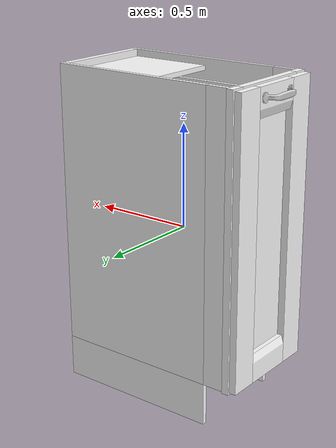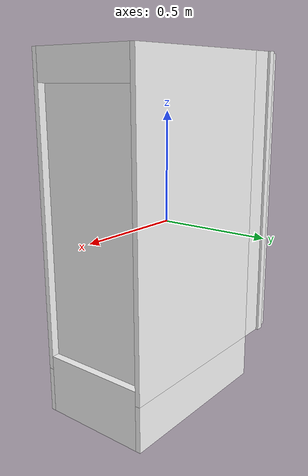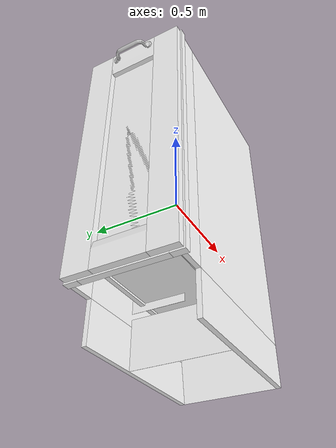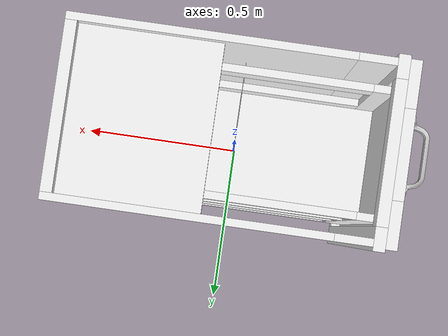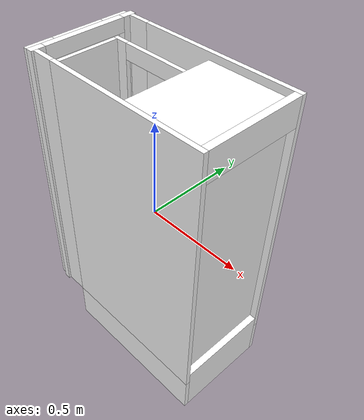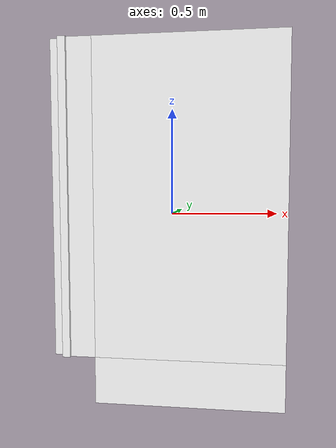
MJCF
<?xml version='1.0' encoding='us-ascii'?>
<mujoco model="partnet_2950d1baed4dbd78c59350d819542ec7">
    <compiler angle="radian" eulerseq="zxy" meshdir="textured_objs/" />
    <size nconmax="100" njmax="500" />
    <asset>
		<mesh file="original-23.stl" name="original-23" />
        <mesh file="original-34.stl" name="original-34" />
        <mesh file="original-38.stl" name="original-38" />
        <mesh file="original-29.stl" name="original-29" />
        <mesh file="original-45.stl" name="original-45" />
        <mesh file="original-42.stl" name="original-42" />
        <mesh file="original-43.stl" name="original-43" />
        <mesh file="original-48.stl" name="original-48" />
        <mesh file="original-44.stl" name="original-44" />
        <mesh file="original-47.stl" name="original-47" />
        <mesh file="original-49.stl" name="original-49" />
        <mesh file="original-15.stl" name="original-15" />
        <mesh file="original-14.stl" name="original-14" />
        <mesh file="original-11.stl" name="original-11" />
        <mesh file="original-10.stl" name="original-10" />
        <mesh file="original-30.stl" name="original-30" />
        <mesh file="original-50.stl" name="original-50" />
        <mesh file="original-5.stl" name="original-5" />
        <mesh file="original-2.stl" name="original-2" />
        <mesh file="original-19.stl" name="original-19" />
        <mesh file="original-7.stl" name="original-7" />
        <mesh file="original-26.stl" name="original-26" />
        <mesh file="original-25.stl" name="original-25" />
        <mesh file="original-24.stl" name="original-24" />
        <mesh file="original-3.stl" name="original-3" />
        <mesh file="original-27.stl" name="original-27" />
        <mesh file="original-8.stl" name="original-8" />
        <mesh file="original-6.stl" name="original-6" />
        <mesh file="original-28.stl" name="original-28" />
        <mesh file="original-32.stl" name="original-32" />
        <mesh file="original-36.stl" name="original-36" />
        <mesh file="original-22.stl" name="original-22" />
        <mesh file="original-4.stl" name="original-4" />
        <mesh file="original-39.stl" name="original-39" />
        <mesh file="original-33.stl" name="original-33" />
        <mesh file="original-37.stl" name="original-37" />
        <mesh file="original-40.stl" name="original-40" />
        <mesh file="original-18.stl" name="original-18" />
        <mesh file="original-16.stl" name="original-16" />
        <mesh file="original-17.stl" name="original-17" />
        <mesh file="original-12.stl" name="original-12" />
		<texture builtin="flat" height="32" name="objTex" rgb1="1 1 1" type="cube" width="32" />
		<texture builtin="flat" height="32" name="handleTex" rgb1="0.8 0.8 0.8" type="cube" width="32" />
		<material name="geomObj" shininess="0.03" specular="0.75" texture="objTex" />
		<material name="geomHandle" shininess="0.03" specular="0.75" texture="handleTex" />
	</asset>
	<worldbody>
		<body name="base" pos="0.0 0.0 0.0" quat="1.0 0.0 0.0 0.0">
			<geom material="geomObj" mesh="original-15" quat="0.5 0.5 -0.5 -0.5" type="mesh" />
			<geom material="geomObj" mesh="original-14" quat="0.5 0.5 -0.5 -0.5" type="mesh" />
			<geom material="geomObj" mesh="original-11" quat="0.5 0.5 -0.5 -0.5" type="mesh" />
			<geom material="geomObj" mesh="original-10" quat="0.5 0.5 -0.5 -0.5" type="mesh" />
			<geom material="geomObj" mesh="original-30" quat="0.5 0.5 -0.5 -0.5" type="mesh" />
			<geom material="geomObj" mesh="original-50" quat="0.5 0.5 -0.5 -0.5" type="mesh" />
			<geom material="geomObj" mesh="original-5" quat="0.5 0.5 -0.5 -0.5" type="mesh" />
			<geom material="geomObj" mesh="original-2" quat="0.5 0.5 -0.5 -0.5" type="mesh" />
			<geom material="geomObj" mesh="original-19" quat="0.5 0.5 -0.5 -0.5" type="mesh" />
			<geom material="geomObj" mesh="original-7" quat="0.5 0.5 -0.5 -0.5" type="mesh" />
			<geom material="geomObj" mesh="original-26" quat="0.5 0.5 -0.5 -0.5" type="mesh" />
			<geom material="geomObj" mesh="original-25" quat="0.5 0.5 -0.5 -0.5" type="mesh" />
			<geom material="geomObj" mesh="original-24" quat="0.5 0.5 -0.5 -0.5" type="mesh" />
			<geom material="geomObj" mesh="original-3" quat="0.5 0.5 -0.5 -0.5" type="mesh" />
			<geom material="geomObj" mesh="original-27" quat="0.5 0.5 -0.5 -0.5" type="mesh" />
			<geom material="geomObj" mesh="original-8" quat="0.5 0.5 -0.5 -0.5" type="mesh" />
			<geom material="geomObj" mesh="original-6" quat="0.5 0.5 -0.5 -0.5" type="mesh" />
			<geom material="geomObj" mesh="original-28" quat="0.5 0.5 -0.5 -0.5" type="mesh" />
			<geom material="geomObj" mesh="original-32" quat="0.5 0.5 -0.5 -0.5" type="mesh" />
			<geom material="geomObj" mesh="original-36" quat="0.5 0.5 -0.5 -0.5" type="mesh" />
			<geom material="geomObj" mesh="original-22" quat="0.5 0.5 -0.5 -0.5" type="mesh" />
			<geom material="geomObj" mesh="original-4" quat="0.5 0.5 -0.5 -0.5" type="mesh" />
			<geom material="geomObj" mesh="original-39" quat="0.5 0.5 -0.5 -0.5" type="mesh" />
			<geom material="geomObj" mesh="original-33" quat="0.5 0.5 -0.5 -0.5" type="mesh" />
			<geom material="geomObj" mesh="original-37" quat="0.5 0.5 -0.5 -0.5" type="mesh" />
			<geom material="geomObj" mesh="original-40" quat="0.5 0.5 -0.5 -0.5" type="mesh" />
			<geom material="geomObj" mesh="original-18" quat="0.5 0.5 -0.5 -0.5" type="mesh" />
			<geom material="geomObj" mesh="original-16" quat="0.5 0.5 -0.5 -0.5" type="mesh" />
			<geom material="geomObj" mesh="original-17" quat="0.5 0.5 -0.5 -0.5" type="mesh" />
			<geom material="geomObj" mesh="original-12" quat="0.5 0.5 -0.5 -0.5" type="mesh" />
			<body name="link_0" pos="-0.472396 0.0256518 0.0692093" quat="0.5 0.5 -0.5 -0.5">
				<inertial diaginertia="9.77233 7.75724 3.65604" mass="43.0217" pos="0.0305805 -0.0986264 -0.199105" quat="0.582778 0.812631 0 0" />
				<joint axis="0 0 1" limited="true" name="joint_0" pos="0 0 0" range="0 0.724" type="slide" />
				<geom material="geomObj" mesh="original-23" name="shelf" pos="0.0256518 -0.0692093 -0.472396" type="mesh" />
				<geom material="geomObj" mesh="original-34" pos="0.0256518 -0.0692093 -0.472396" type="mesh" />
				<geom material="geomObj" mesh="original-38" pos="0.0256518 -0.0692093 -0.472396" type="mesh" />
				<geom material="geomObj" mesh="original-29" name="cabinet_door" pos="0.0256518 -0.0692093 -0.472396" type="mesh" />
				<geom material="geomObj" mesh="original-45" pos="0.0256518 -0.0692093 -0.472396" type="mesh" />
				<geom material="geomObj" mesh="original-42" pos="0.0256518 -0.0692093 -0.472396" type="mesh" />
				<geom material="geomObj" mesh="original-43" pos="0.0256518 -0.0692093 -0.472396" type="mesh" />
				<geom material="geomObj" mesh="original-48" pos="0.0256518 -0.0692093 -0.472396" type="mesh" />
				<geom material="geomObj" mesh="original-44" pos="0.0256518 -0.0692093 -0.472396" type="mesh" />
				<geom material="geomObj" mesh="original-47" pos="0.0256518 -0.0692093 -0.472396" type="mesh" />
				<geom material="geomHandle" mesh="original-49" name="handle" pos="0.0256518 -0.0692093 -0.472396" type="mesh" />
			</body>
		</body>
		<body name="external_camera_0_body" pos="0.0 0.0 0.0" quat="1.0 0.0 0.0 0.0">
			<camera euler="-1.57 1.57 0.0" fovy="85" name="external_camera_0" pos="0. 0. 0." />
			<inertial diaginertia="1 1 1" mass="1" pos="0.0 0.0 0.0" />
			<joint axis="1 0 0" name="external_camera_0_jnt" pos="0. 0. 0." type="free" />
		</body>
	</worldbody>
	<option gravity="0.0 0.0 0.0" />
	<option>
		<flag contact="disable" />
	</option>
	<statistic center="0.0 0.0 0.0" extent="1.0" />
	<visual>
		<map fogend="5." fogstart="3." force="0.1" zfar="12" znear="0.1" />
	</visual>
	<actuator>
		<velocity joint="joint_0" kv="10" name="act_0" />
		<velocity joint="external_camera_0_jnt" kv="10" name="act_1" />
	</actuator>
</mujoco>
